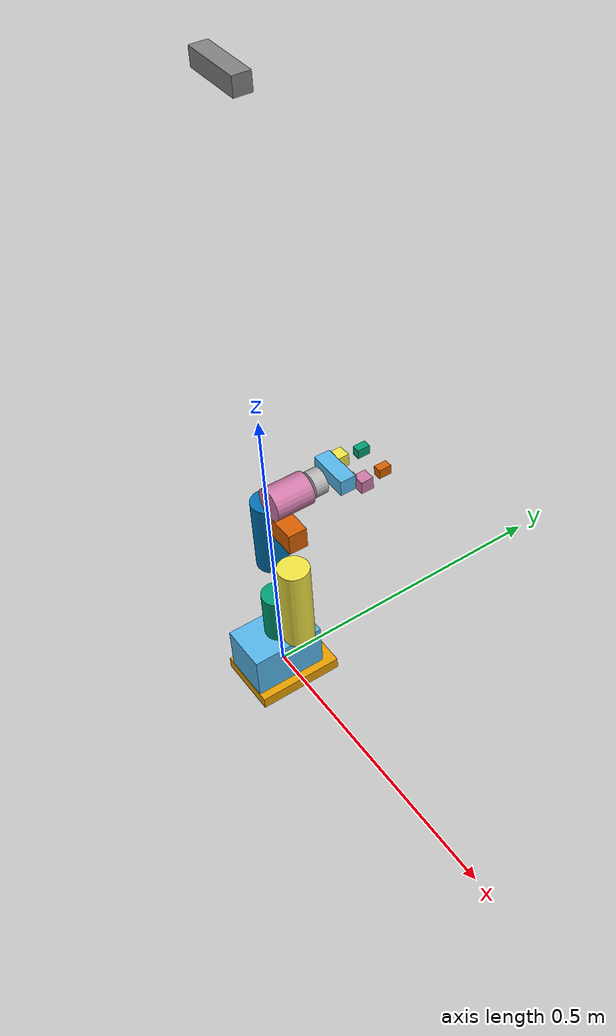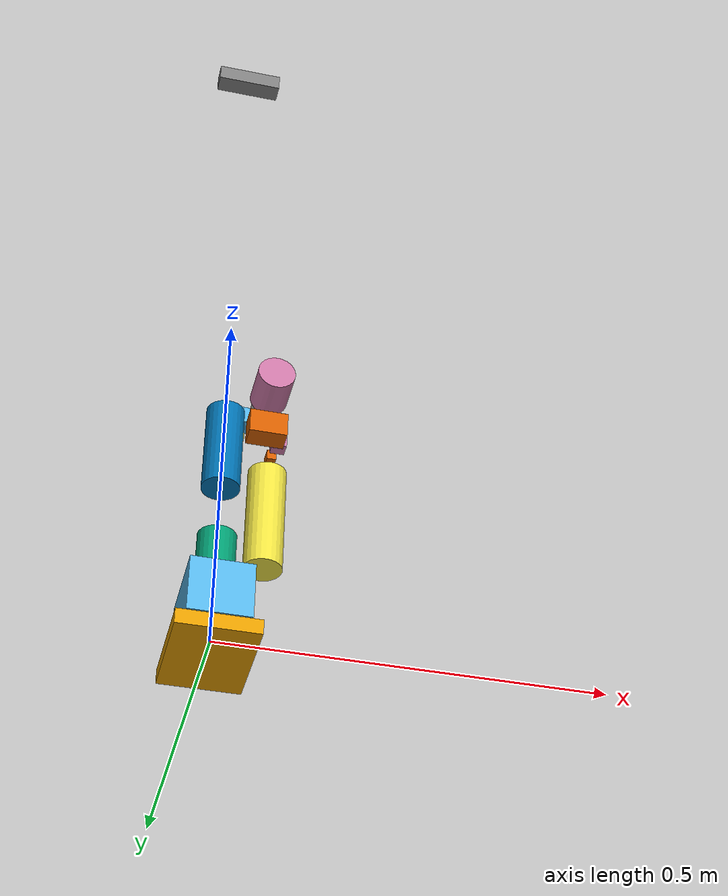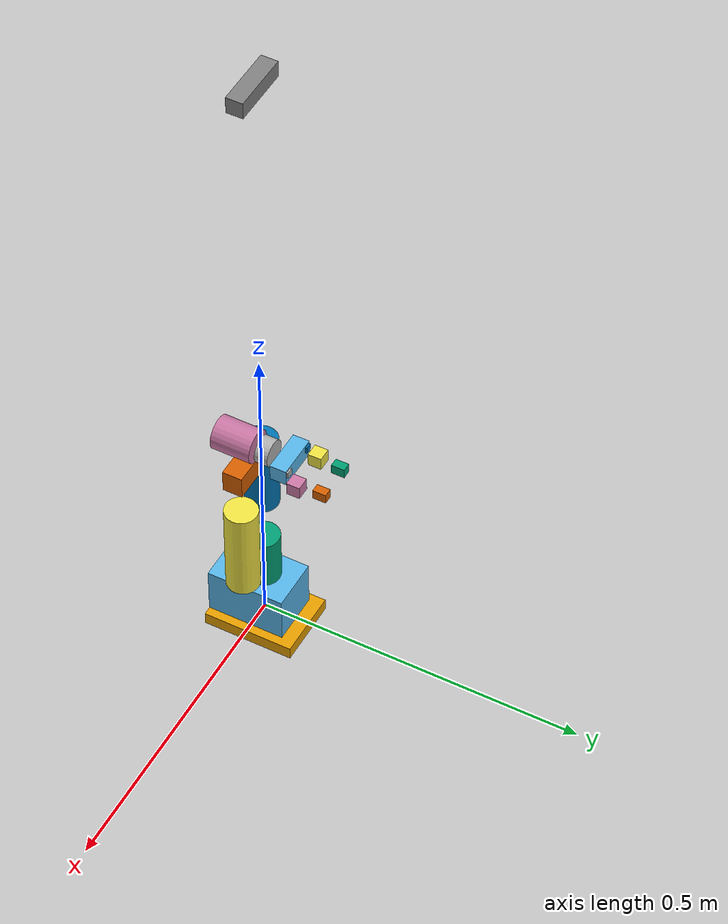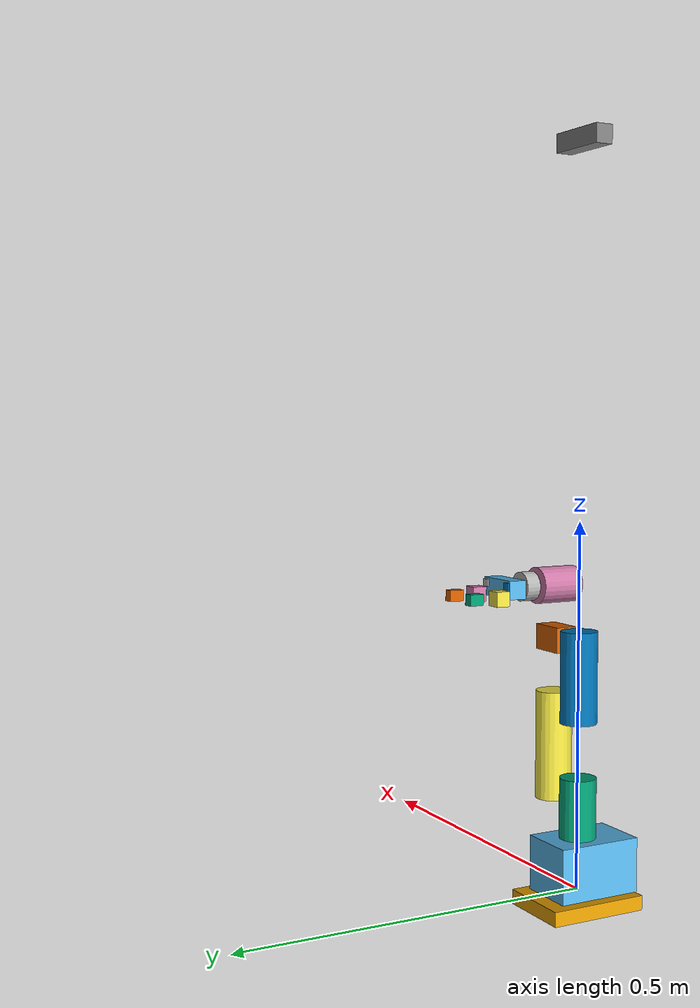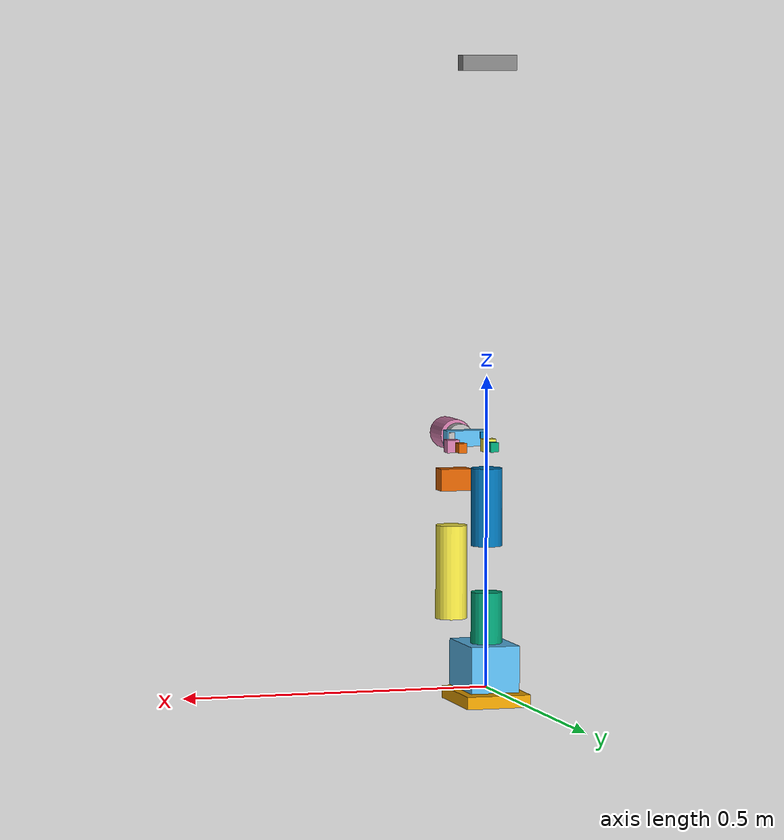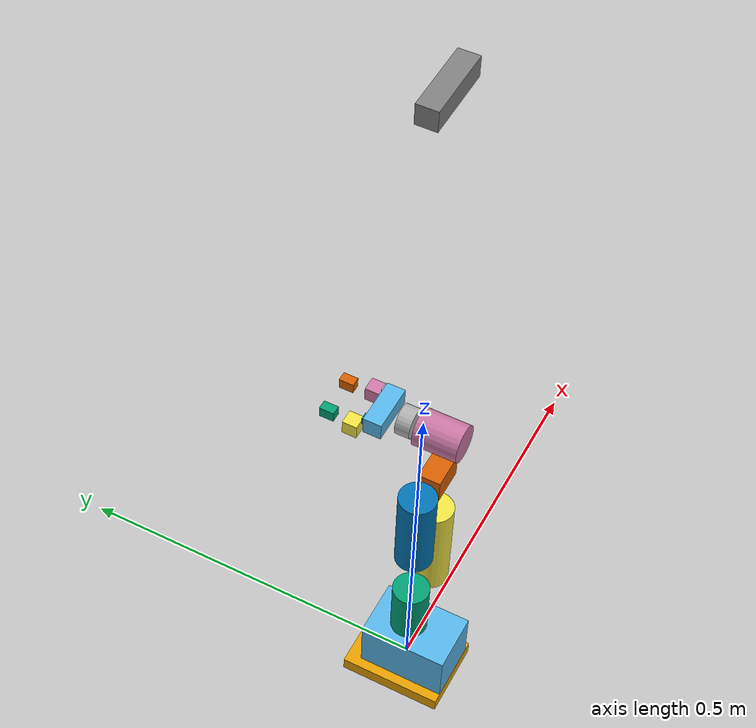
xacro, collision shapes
<?xml version="1.0" ?>
<robot name="full_robot" xmlns:xacro="http://wiki.ros.org/xacro">
    <!-- ROBOT ARM -->
    <xacro:include filename="$(find robot_description)/urdf/robot_arm.urdf.xacro"/>

    <!-- ROBOT GRIPPER -->
    <xacro:include filename="$(find robot_description)/urdf/adaptive_gripper.urdf.xacro"/>
    <xacro:adaptive_gripper parent="flange_link"/>

    <!--ROBOT CONTROL-->
    <xacro:include filename="$(find robot_description)/urdf/robot_control.urdf.xacro"/>

</robot>

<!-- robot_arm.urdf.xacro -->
<robot name="my_robot" xmlns:xacro="http://www.ros.org/wiki/xacro" >

  <xacro:property name="joint_effort" value="56.0"/>
  <xacro:property name="joint_velocity" value="2.792527"/>
  <xacro:property name="joint_damping" value="0.0"/>
  <xacro:property name="joint_friction" value="0.0"/>

  <xacro:property name="link1_mass" value="0.12"/>
  <xacro:property name="link2_mass" value="0.19"/>
  <xacro:property name="link3_mass" value="0.16"/>
  <xacro:property name="link4_mass" value="0.124"/>
  <xacro:property name="link5_mass" value="0.11"/>
  <xacro:property name="link6_mass" value="0.0739"/>
  <xacro:property name="flange_mass" value="0.035"/>

    <xacro:property name="M_PI" value="3.1415926535897931" />

    <xacro:property name="d435_cam_width" value="0.090"/>
    <xacro:property name="d435_cam_height" value="0.025"/>
    <xacro:property name="d435_cam_depth" value="0.02505"/>

  <xacro:macro name="link_inertial" params="mass ixx iyy izz">
    <inertial>
      <origin xyz="0 0 0.0" rpy="0 0 0"/>
      <mass value="${mass}"/>
      <inertia
        ixx="${ixx}" ixy="0.0" ixz="0.0"
        iyy="${iyy}" iyz="0.0"
        izz="${izz}"/>
    </inertial>
  </xacro:macro>

  <xacro:macro name="material_visual" params="ref_link ambient diffuse specular">
    <gazebo reference="${ref_link}">
      <visual>
        <material>
          <ambient>${ambient}</ambient>
          <diffuse>${diffuse}</diffuse>
          <specular>${specular}</specular>
        </material>
      </visual>
    </gazebo>
  </xacro:macro>

    <link name="base_link">
        <inertial>
            <origin xyz="0 0 0.0" rpy="0 0 0"/>
            <mass value="1"/>
            <inertia
                ixx="0.000784" ixy="0.0" ixz="0.0"
                iyy="0.000867" iyz="0.0"
                izz="0.001598"/>
        </inertial>
        <visual>
            <geometry>
                <mesh filename="file://$(find robot_description)/meshes/g_shape_base_v2_0/visual/base_link.dae"/>
            </geometry>
            <origin xyz="0.0 0 -0.03" rpy="0 0 ${pi/2}"/>
        </visual>
        <collision>
            <geometry>
                <box size="0.105 0.14 0.02"/>
            </geometry>
            <origin xyz="0.0 0.0 -0.015" rpy="0 0 0"/>
        </collision>
    </link>
    <gazebo reference="base_link">
        <visual>
            <material>
                <ambient>0.5 0.5 0.5 1</ambient>
                <diffuse>0.5 0.5 0.5 1</diffuse>
                <specular>0.5 0.5 0.5 1</specular>
            </material>
        </visual>
    </gazebo>

    <link name="link1">
      <xacro:link_inertial mass="${link1_mass}" ixx="0.000148" iyy="0.000148" izz="0.000096"/>
      <visual>
        <geometry>
          <mesh filename="file://$(find robot_description)/meshes/mycobot_280/visual/link1.dae"/>
        </geometry>
        <origin xyz="0.0 0 0" rpy="0 0 ${-pi/2}"/>
      </visual>
      <collision>
        <geometry>
          <box size="0.08 0.12 0.075"/>
        </geometry>
        <origin xyz="0.0 -0.01 0.034" rpy="0 0 0"/>
      </collision>
    </link>

    <link name="link2">
      <xacro:link_inertial mass="${link2_mass}" ixx="0.000148" iyy="0.000148" izz="0.000096"/>
      <visual>
        <geometry>
          <mesh filename="file://$(find robot_description)/meshes/mycobot_280/visual/link2.dae"/>
        </geometry>
        <origin xyz="0.0 0 -0.06096" rpy="0 0 ${-pi/2}"/>
      </visual>
      <collision>
        <geometry>
          <cylinder radius="0.025" length="0.085"/>
        </geometry>
        <origin xyz="0.0 0 -0.02" rpy="0 0 ${-pi/2}"/>
      </collision>
    </link>

    <link name="link3">
      <xacro:link_inertial mass="${link3_mass}" ixx="0.000148" iyy="0.000148" izz="0.000096"/>
      <visual>
        <geometry>
          <mesh filename="file://$(find robot_description)/meshes/mycobot_280/visual/link3.dae"/>
        </geometry>
        <origin xyz="0.0 0 0.03256" rpy="0 ${-pi/2} 0"/>
      </visual>
      <collision>
        <geometry>
          <cylinder radius="0.025" length="0.15"/>
        </geometry>
        <origin xyz="-0.058 0 0.059" rpy="0 ${-pi/2} 0"/>
      </collision>
    </link>

    <link name="link4">
      <xacro:link_inertial mass="${link4_mass}" ixx="0.000103" iyy="0.000103" izz="0.000096"/>
      <visual>
        <geometry>
          <mesh filename="file://$(find robot_description)/meshes/mycobot_280/visual/link4.dae"/>
        </geometry>
        <origin xyz="0.0 0 0.03056" rpy="0 ${-pi/2} 0"/>
      </visual>
      <collision>
        <geometry>
          <cylinder radius="0.025" length="0.125"/>
        </geometry>
        <origin xyz="-0.05 0 0.0" rpy="0 ${-pi/2} 0"/>
      </collision>
    </link>

    <link name="link5">
      <xacro:link_inertial mass="${link5_mass}" ixx="0.000103" iyy="0.000103" izz="0.000096"/>
      <visual>
        <geometry>
          <mesh filename="file://$(find robot_description)/meshes/mycobot_280/visual/link5.dae"/>
        </geometry>
        <origin xyz="0.0 0 -0.03356" rpy="${-pi/2} 0 0"/>
      </visual>
      <collision>
        <geometry>
          <box size="0.03 0.035 0.05"/>
        </geometry>
        <origin xyz="0.0 0 -0.005" rpy="0 0.0 0"/>
      </collision>
    </link>

    <link name="link6">
      <xacro:link_inertial mass="${link6_mass}" ixx="0.00006649" iyy="0.00006649" izz="0.000096"/>
      <visual>
        <geometry>
          <mesh filename="file://$(find robot_description)/meshes/mycobot_280/visual/link6.dae"/>
        </geometry>
        <origin xyz="0 0.00 -0.038" rpy="0 0 0"/>
      </visual>
      <collision>
        <geometry>
          <cylinder radius="0.025" length="0.06"/>
        </geometry>
        <origin xyz="0 0.00 0.0" rpy="${-pi/2} 0 0"/>
      </collision>
    </link>

    <link name="flange_link">
      <xacro:link_inertial mass="${flange_mass}" ixx="0.0000149" iyy="0.0000149" izz="0.0000196"/>
      <visual>
        <geometry>
          <mesh filename="file://$(find robot_description)/meshes/mycobot_280/visual/link7.dae"/>
        </geometry>
        <origin xyz="0.0 0 -0.012" rpy="0 0 0"/>
      </visual>
      <collision>
        <geometry>
          <cylinder radius="0.02" length="0.02"/>
        </geometry>
        <origin xyz="0 0.00 0.0" rpy="0 0 0"/>
      </collision>
    </link>

    <link name="camera_link">
      <visual>
        <origin rpy="0 0 0"/>
        <geometry>
          <mesh filename="file://$(find robot_description)/meshes/d435/visual/d435.stl"/>
        </geometry>
        <material><color rgba="0.5 0.5 0.5 1"/></material>
      </visual>

      <collision>
        <geometry>
          <box size="${d435_cam_depth} ${d435_cam_width} ${d435_cam_height}"/>
        </geometry>
      </collision>

      <inertial>
        <mass value="0.072"/>
        <origin xyz="0 0 0"/>
        <inertia ixx="0.00388" ixy="0" ixz="0" iyy="0.00049" iyz="0" izz="0.00387"/>
      </inertial>
    </link>

    <joint name="camera_link" type="fixed">
      <parent link="base_link"/>
      <child link="camera_link"/>
      <origin xyz="0 0 1" rpy=" 0 1.571 -1.571"/>

    </joint>

    <joint name="base_link_to_link1" type="fixed">
      <parent link="base_link"/>
      <child link="link1"/>
    </joint>

    <joint name="link1_to_link2" type="revolute">
      <axis xyz="0 0 1"/>
      <limit effort="${joint_effort}" lower="-2.879793" upper="2.879793" velocity="${joint_velocity}"/>
      <parent link="link1"/>
      <child link="link2"/>
      <origin xyz="0 0 0.13156" rpy="0 0 ${pi/2}"/>
      <dynamics damping="${joint_damping}" friction="${joint_friction}"/>
    </joint>

    <joint name="link2_to_link3" type="revolute">
      <axis xyz="0 0 1"/>
      <limit effort="${joint_effort}" lower="-2.879793" upper="2.879793" velocity="${joint_velocity}"/>
      <parent link="link2"/>
      <child link="link3"/>
      <origin xyz="0 0 -0.001" rpy="0 ${pi/2} ${-pi/2}"/>
      <dynamics damping="${joint_damping}" friction="${joint_friction}"/>
    </joint>

    <joint name="link3_to_link4" type="revolute">
      <axis xyz="0 0 1"/>
      <limit effort="${joint_effort}" lower="-2.879793" upper="2.879793" velocity="${joint_velocity}"/>
      <parent link="link3"/>
      <child link="link4"/>
      <origin xyz="-0.1104 0 0" rpy="0 0 0"/>
      <dynamics damping="${joint_damping}" friction="${joint_friction}"/>
    </joint>

    <joint name="link4_to_link5" type="revolute">
      <axis xyz="0 0 1"/>
      <limit effort="${joint_effort}" lower="-2.879793" upper="2.879793" velocity="${joint_velocity}"/>
      <parent link="link4"/>
      <child link="link5"/>
      <origin xyz="-0.096 0 0.06062" rpy="0 0 ${-pi/2}"/>
      <dynamics damping="${joint_damping}" friction="${joint_friction}"/>
    </joint>

    <joint name="link5_to_link6" type="revolute">
      <axis xyz="0 0 1"/>
      <limit effort="${joint_effort}" lower="-2.879793" upper="2.879793" velocity="${joint_velocity}"/>
      <parent link="link5"/>
      <child link="link6"/>
      <origin xyz="0 -0.07318 0" rpy="${pi/2} ${-pi/2} 0"/>
      <dynamics damping="${joint_damping}" friction="${joint_friction}"/>
    </joint>

    <joint name="link6_to_flange_link" type="revolute">
      <axis xyz="0 0 1"/>
      <limit effort="${joint_effort}" lower="-3.05" upper="3.05" velocity="${joint_velocity}"/>
      <parent link="link6"/>
      <child link="flange_link"/>
      <origin xyz="0 0.0456 0" rpy="${-pi/2} 0 0"/>
      <dynamics damping="${joint_damping}" friction="${joint_friction}"/>
    </joint>

    <xacro:material_visual ref_link="link1" ambient="0.5 0.5 0.5 1" diffuse="0.5 0.5 0.5 1" specular="0.5 0.5 0.5 1"/>
    <xacro:material_visual ref_link="link2" ambient="1 1 1 1" diffuse="1 1 1 1" specular="1 1 1 1"/>
    <xacro:material_visual ref_link="link3" ambient="1 1 1 1" diffuse="1 1 1 1" specular="1 1 1 1"/>
    <xacro:material_visual ref_link="link4" ambient="1 1 1 1" diffuse="1 1 1 1" specular="1 1 1 1"/>
    <xacro:material_visual ref_link="link5" ambient="1 1 1 1" diffuse="1 1 1 1" specular="1 1 1 1"/>
    <xacro:material_visual ref_link="link6" ambient="1 1 1 1" diffuse="1 1 1 1" specular="1 1 1 1"/>
    <xacro:material_visual ref_link="flange_link" ambient="0.5 0.5 0.5 1" diffuse="0.5 0.5 0.5 1" specular="0.5 0.5 0.5 1"/>
    <gazebo reference="camera_link">
      <sensor type="depth" name="realsense_depth">
        <update_rate>30</update_rate>

        <camera>
          <horizontal_fov>1.5184</horizontal_fov>
          <image>
            <width>640</width>
            <height>480</height>
            <format>R8G8B8</format>
          </image>
          <clip>
            <near>0.05</near>
            <far>5.0</far>
          </clip>
        </camera>

        <plugin
          name="gazebo_ros_openni_kinect"
          filename="libgazebo_ros_camera.so">

          <always_on>true</always_on>
          <camera_name>camera</camera_name>

          <image_topic_name>camera/color/image_raw</image_topic_name>
          <camera_info_topic_name>camera/color/camera_info</camera_info_topic_name>

          <depth_image_topic_name>camera/depth/image_raw</depth_image_topic_name>
          <depth_camera_info_topic_name>camera/depth/camera_info</depth_camera_info_topic_name>

          <point_cloud_topic_name>camera/depth/color/points</point_cloud_topic_name>

          <frame_name>camera_head_depth_optical_frame</frame_name>
        </plugin>

      </sensor>
    </gazebo>

</robot>

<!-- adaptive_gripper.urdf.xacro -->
<robot xmlns:xacro="http://wiki.ros.org/xacro">

  <xacro:property name="joint_effort" value="56.0"/>
  <xacro:property name="joint_velocity" value="2.792527"/>
  <xacro:property name="joint_damping" value="0.0"/>
  <xacro:property name="joint_friction" value="0.0"/>

  <xacro:property name="gripper_link_mass" value="0.007"/>
  <xacro:property name="gripper_link_ixx" value="1e-6"/>
  <xacro:property name="gripper_link_iyy" value="1e-6"/>
  <xacro:property name="gripper_link_izz" value="1e-6"/>

  <xacro:macro name="gripper_link_inertial">
    <inertial>
      <origin xyz="0 0 0.0" rpy="0 0 0"/>
      <mass value="${gripper_link_mass}"/>
      <inertia
        ixx="${gripper_link_ixx}" ixy="0.0" ixz="0.0"
        iyy="${gripper_link_iyy}" iyz="0.0"
        izz="${gripper_link_izz}"/>
    </inertial>
  </xacro:macro>

  <xacro:macro name="adaptive_gripper" params="parent">
    <link name="gripper_base">
      <inertial>
        <origin xyz="0 0 0.0" rpy="0 0 0"/>
        <mass value="0.07"/>
        <inertia
          ixx="0.000010725" ixy="0.0" ixz="0.0"
          iyy="0.000014392" iyz="0.0"
          izz="0.000018517"/>
      </inertial>
      <visual>
        <geometry>
          <mesh filename="file://$(find robot_description)/meshes/adaptive_gripper/visual/gripper_base.dae"/>
        </geometry>
        <origin xyz="0.0 0.0 -0.012" rpy="0 0 0"/>
      </visual>
      <collision>
        <geometry>
          <box size="0.065 0.025 0.025"/>
        </geometry>
        <origin xyz="0.0 0.0 0.0" rpy="0 0 0"/>
      </collision>
    </link>

    <joint name="${parent}_to_gripper_base" type="fixed">
      <parent link="${parent}"/>
      <child link="gripper_base"/>
      <origin xyz="0 0 0.034" rpy="1.579 0 0"/>
    </joint>

    <link name="gripper_left1">
      <xacro:gripper_link_inertial/>
      <visual>
        <geometry>
          <mesh filename="file://$(find robot_description)/meshes/adaptive_gripper/visual/gripper_left1.dae"/>
        </geometry>
        <origin xyz="0.039 -0.0133 -0.012" rpy="0 0 0"/>
      </visual>
      <collision>
        <geometry>
          <box size="0.013 0.02 0.015"/>
        </geometry>
        <origin xyz="0.013 0.042 -0.010" rpy="0 0 0"/>
      </collision>
    </link>

    <link name="gripper_left2">
      <xacro:gripper_link_inertial/>
      <visual>
        <geometry>
          <mesh filename="file://$(find robot_description)/meshes/adaptive_gripper/visual/gripper_left2.dae"/>
        </geometry>
        <origin xyz="0.005 -0.0195 -0.012" rpy="0 0 0"/>
      </visual>
      <collision>
        <geometry>
          <box size="0.02 0.02 0.02"/>
        </geometry>
        <origin xyz="-0.025 0.0 -0.010" rpy="0 0 0"/>
      </collision>
    </link>

    <link name="gripper_left3">
      <xacro:gripper_link_inertial/>
      <visual>
        <geometry>
          <mesh filename="file://$(find robot_description)/meshes/adaptive_gripper/visual/gripper_left3.dae"/>
        </geometry>
        <origin xyz="0.012 0.0025 -0.012" rpy="0 0 0"/>
      </visual>
      <collision>
        <geometry>
          <box size="0.01 0.01 0.01"/>
        </geometry>
        <origin xyz="-0.014 0.005 0.005" rpy="0 0 0"/>
      </collision>
    </link>

    <link name="gripper_right1">
      <xacro:gripper_link_inertial/>
      <visual>
        <geometry>
          <mesh filename="file://$(find robot_description)/meshes/adaptive_gripper/visual/gripper_right1.dae"/>
        </geometry>
        <origin xyz="-0.039 -0.0133 -0.012" rpy="0 0 0"/>
      </visual>
      <collision>
        <geometry>
          <box size="0.013 0.02 0.015"/>
        </geometry>
        <origin xyz="-0.013 0.042 -0.010" rpy="0 0 0"/>
      </collision>
    </link>

    <link name="gripper_right2">
      <xacro:gripper_link_inertial/>
      <visual>
        <geometry>
          <mesh filename="file://$(find robot_description)/meshes/adaptive_gripper/visual/gripper_right2.dae"/>
        </geometry>
        <origin xyz="-0.005 -0.0195 -0.012" rpy="0 0 0"/>
      </visual>
      <collision>
        <geometry>
          <box size="0.02 0.02 0.02"/>
        </geometry>
        <origin xyz="0.025 0.0 -0.010" rpy="0 0 0"/>
      </collision>
    </link>

    <link name="gripper_right3">
      <xacro:gripper_link_inertial/>
      <visual>
        <geometry>
          <mesh filename="file://$(find robot_description)/meshes/adaptive_gripper/visual/gripper_right3.dae"/>
        </geometry>
        <origin xyz="-0.012 0.0025 -0.012" rpy="0 0 0"/>
      </visual>
      <collision>
        <geometry>
          <box size="0.01 0.01 0.01"/>
        </geometry>
        <origin xyz="0.014 0.005 0.005" rpy="0 0 0"/>
      </collision>
    </link>

    <joint name="gripper_controller" type="revolute">
      <axis xyz="0 0 1"/>
      <limit effort="${joint_effort}" lower="-0.7" upper="0.15" velocity="${joint_velocity}"/>
      <parent link="gripper_base"/>
      <child link="gripper_left3"/>
      <origin xyz="-0.012 0.005 0" rpy="0 0 0"/>
      <dynamics damping="${joint_damping}" friction="${joint_friction}"/>
    </joint>

    <joint name="gripper_base_to_gripper_left2" type="revolute">
      <axis xyz="0 0 1"/>
      <limit effort="${joint_effort}" lower="-0.8" upper="0.5" velocity="${joint_velocity}"/>
      <parent link="gripper_base"/>
      <child link="gripper_left2"/>
      <origin xyz="-0.005 0.027 0" rpy="0 0 0"/>
      <mimic joint="gripper_controller" multiplier="1.0" offset="0"/>
      <dynamics damping="${joint_damping}" friction="${joint_friction}"/>
    </joint>

    <joint name="gripper_left3_to_gripper_left1" type="revolute">
      <axis xyz="0 0 1"/>
      <limit effort="${joint_effort}" lower="-0.5" upper="0.5" velocity="${joint_velocity}"/>
      <parent link="gripper_left3"/>
      <child link="gripper_left1"/>
      <origin xyz="-0.027 0.016 0" rpy="0 0 0"/>
      <mimic joint="gripper_controller" multiplier="-1.0" offset="0"/>
      <dynamics damping="${joint_damping}" friction="${joint_friction}"/>
    </joint>

    <joint name="gripper_base_to_gripper_right3" type="revolute">
      <axis xyz="0 0 1"/>
      <limit effort="${joint_effort}" lower="-0.15" upper="0.7" velocity="${joint_velocity}"/>
      <parent link="gripper_base"/>
      <child link="gripper_right3"/>
      <origin xyz="0.012 0.005 0" rpy="0 0 0"/>
      <mimic joint="gripper_controller" multiplier="-1.0" offset="0"/>
      <dynamics damping="${joint_damping}" friction="${joint_friction}"/>
    </joint>

    <joint name="gripper_base_to_gripper_right2" type="revolute">
      <axis xyz="0 0 1"/>
      <limit effort="${joint_effort}" lower="-0.5" upper="0.8" velocity="${joint_velocity}"/>
      <parent link="gripper_base"/>
      <child link="gripper_right2"/>
      <origin xyz="0.005 0.027 0" rpy="0 0 0"/>
      <mimic joint="gripper_controller" multiplier="-1.0" offset="0"/>
      <dynamics damping="${joint_damping}" friction="${joint_friction}"/>
    </joint>

    <joint name="gripper_right3_to_gripper_right1" type="revolute">
      <axis xyz="0 0 1"/>
      <limit effort="${joint_effort}" lower="-0.5" upper="0.5" velocity="${joint_velocity}"/>
      <parent link="gripper_right3"/>
      <child link="gripper_right1"/>
      <origin xyz="0.027 0.016 0" rpy="0 0 0"/>
      <mimic joint="gripper_controller" multiplier="1.0" offset="0"/>
      <dynamics damping="${joint_damping}" friction="${joint_friction}"/>
    </joint>

    <gazebo reference="gripper_base">
      <visual>
        <material>
          <ambient>1 1 1 1</ambient>
          <diffuse>1 1 1 1</diffuse>
          <specular>1 1 1 1</specular>
        </material>
      </visual>
    </gazebo>

  </xacro:macro>

</robot>
